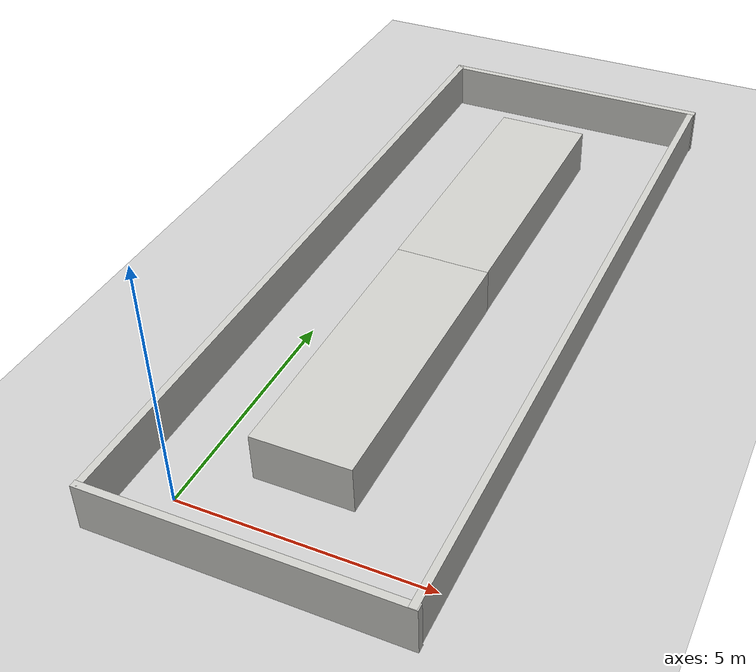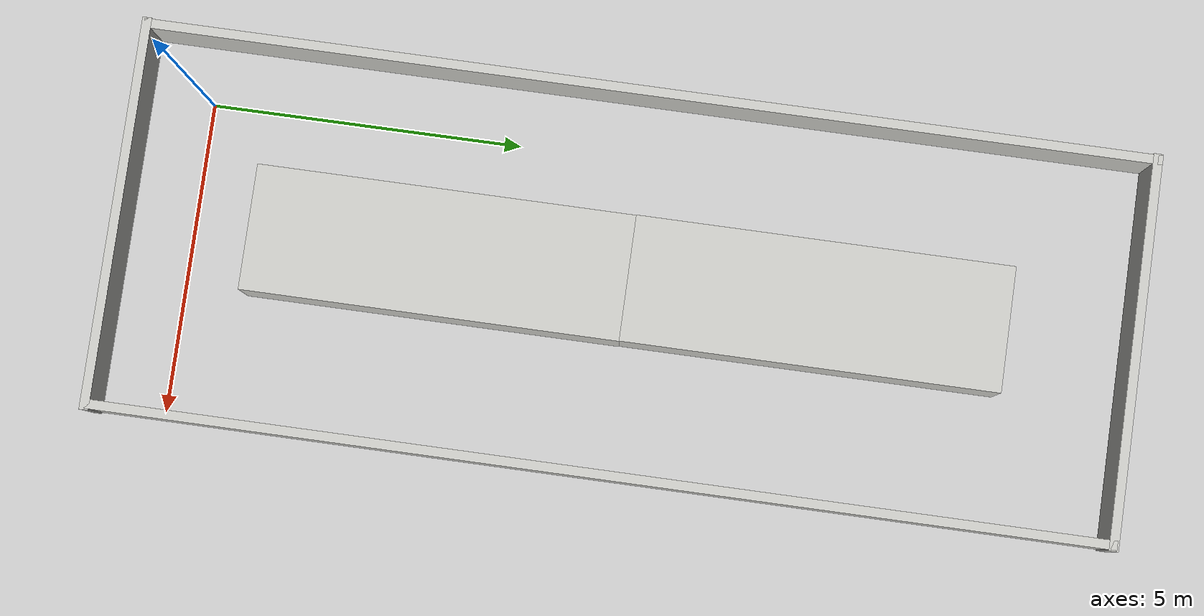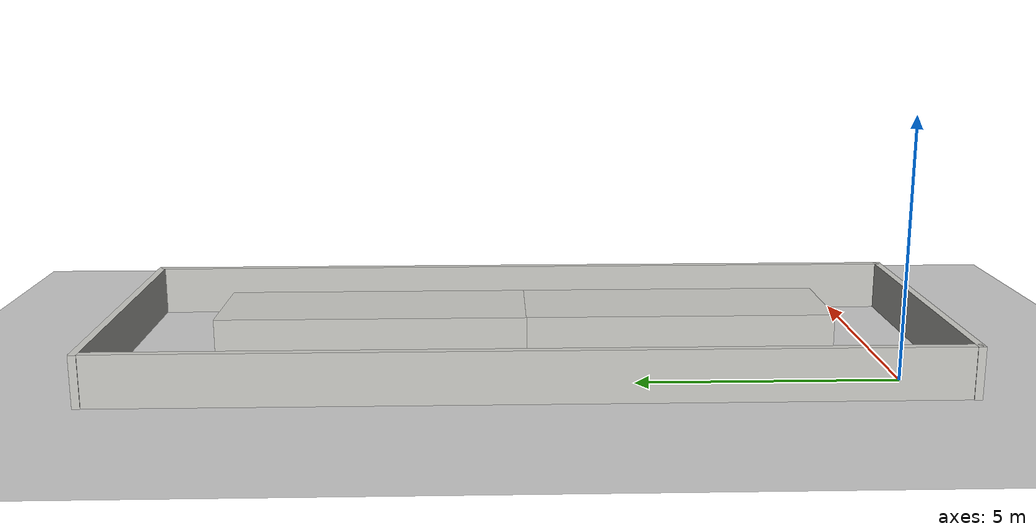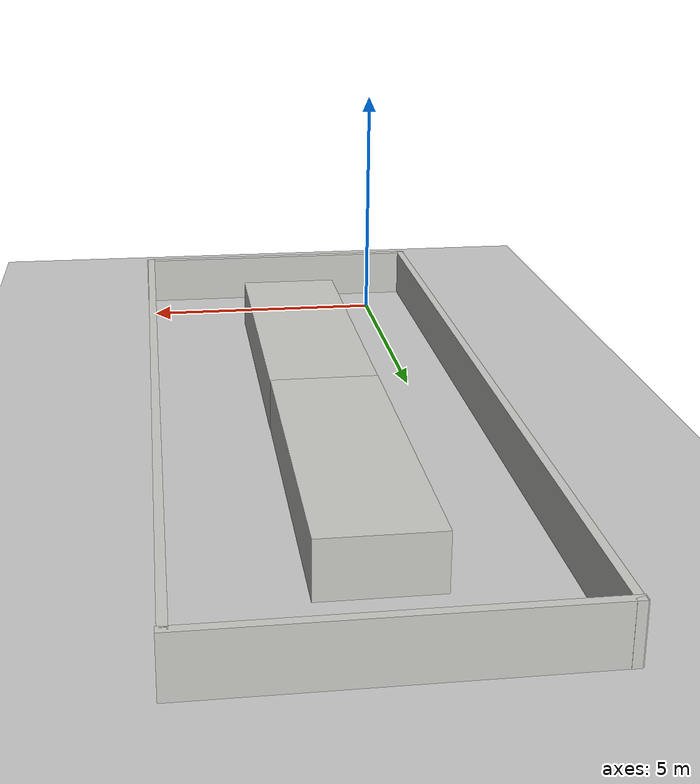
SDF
<sdf version="1.6">
 <world name="default">
  <light name="sun" type="directional">
   <pose>0 0 10 0 -0 0</pose>
   <diffuse>0.8 0.8 0.8 1</diffuse>
   <specular>0.1 0.1 0.1 1</specular>
   <attenuation>
    <range>1000</range>
    <constant>0.9</constant>
    <linear>0.01</linear>
    <quadratic>0.001</quadratic>
   </attenuation>
   <direction>-0.5 0.5 -1</direction>
  </light>
  <model name="ground_plane">
   <static>1</static>
   <link name="link">
    <collision name="collision">
     <geometry><plane><normal>0 0 1</normal><size>100 100</size></plane></geometry>
     <surface><friction><ode><mu>100</mu><mu2>50</mu2></ode></friction></surface>
    </collision>
    <visual name="visual">
     <cast_shadows>0</cast_shadows>
     <geometry><plane><normal>0 0 1</normal><size>100 100</size></plane></geometry>
     <material>
      <script><uri>file://media/materials/scripts/gazebo.material</uri><name>Gazebo/Grey</name></script>
     </material>
    </visual>
   </link>
  </model>
  <gravity>0 0 -9.8</gravity>
  <magnetic_field>6e-06 2.3e-05 -4.2e-05</magnetic_field>
  <atmosphere type="adiabatic"/>
  <physics name="default_physics" default="0" type="ode">
   <max_step_size>0.001</max_step_size>
   <real_time_factor>1.0</real_time_factor>
   <real_time_update_rate>1000</real_time_update_rate>
  </physics>
  <scene><ambient>0.4 0.4 0.4 1</ambient><background>0.7 0.7 0.7 1</background><shadows>1</shadows></scene>
  <spherical_coordinates>
   <surface_model>EARTH_WGS84</surface_model>
   <latitude_deg>0</latitude_deg>
   <longitude_deg>0</longitude_deg>
   <elevation>0</elevation>
   <heading_deg>0</heading_deg>
  </spherical_coordinates>
  <model name="block_2x6m_0">
   <pose>1.983 4.00296 0 0 -0 0</pose>
   <link name="Block">
    <collision name="Block_Collision">
     <geometry><box><size>2 6 1</size></box></geometry>
     <pose>0 0 0.5 0 -0 0</pose>
    </collision>
    <visual name="Block_Visual">
     <pose>0 0 0.5 0 -0 0</pose>
     <geometry><box><size>2 6 1</size></box></geometry>
     <material>
      <script><uri>file://media/materials/scripts/gazebo.material</uri><name>Gazebo/CeilingTiled</name></script>
      <ambient>1 0.764706 0.305882 1</ambient>
     </material>
    </visual>
   </link>
   <static>1</static>
  </model>
  <model name="block_2x6m_1">
   <pose>1.9768 9.99393 0 0 -0 0</pose>
   <link name="Block">
    <collision name="Block_Collision">
     <geometry><box><size>2 6 1</size></box></geometry>
     <pose>0 0 0.5 0 -0 0</pose>
    </collision>
    <visual name="Block_Visual">
     <pose>0 0 0.5 0 -0 0</pose>
     <geometry><box><size>2 6 1</size></box></geometry>
     <material>
      <script><uri>file://media/materials/scripts/gazebo.material</uri><name>Gazebo/CeilingTiled</name></script>
      <ambient>1 0.764706 0.305882 1</ambient>
     </material>
    </visual>
   </link>
   <static>1</static>
  </model>
  <model name="wall_16_m">
   <link name="Wall">
    <pose>-0.661944 0.053049 0 0 -0 0</pose>
    <inertial>
     <inertia><ixx>nan</ixx><ixy>0</ixy><ixz>0</ixz><iyy>nan</iyy><iyz>0</iyz><izz>nan</izz></inertia>
     <mass>0</mass>
    </inertial>
    <visual name="Wall_Visual">
     <pose>0 0 0.5 0 -0 0</pose>
     <geometry><box><size>16.1966 0.15 1</size></box></geometry>
     <material>
      <script><uri>file://media/materials/scripts/gazebo.material</uri><name>Gazebo/CeilingTiled</name></script>
      <ambient>1 0.764706 0.305882 1</ambient>
      <diffuse>1 1 1 1</diffuse>
      <specular>0 0 0 1</specular>
      <emissive>0 0 0 1</emissive>
     </material>
    </visual>
    <collision name="Wall_Collision">
     <pose>0 0 0.5 0 -0 0</pose>
     <geometry><box><size>16.1966 0.15 1</size></box></geometry>
     <surface>
      <friction>
       <ode><mu>1</mu><mu2>1</mu2><fdir1>0 0 0</fdir1><slip1>0</slip1><slip2>0</slip2></ode>
       <torsional>
        <coefficient>1</coefficient>
        <patch_radius>0</patch_radius>
        <surface_radius>0</surface_radius>
        <use_patch_radius>1</use_patch_radius>
        <ode><slip>0</slip></ode>
       </torsional>
      </friction>
      <bounce><restitution_coefficient>0</restitution_coefficient><threshold>1e+06</threshold></bounce>
      <contact>
       <collide_without_contact>0</collide_without_contact>
       <collide_without_contact_bitmask>1</collide_without_contact_bitmask>
       <collide_bitmask>1</collide_bitmask>
       <ode>
        <soft_cfm>0</soft_cfm>
        <soft_erp>0.2</soft_erp>
        <kp>1e+13</kp>
        <kd>1</kd>
        <max_vel>0.01</max_vel>
        <min_depth>0</min_depth>
       </ode>
       <bullet>
        <split_impulse>1</split_impulse>
        <split_impulse_penetration_threshold>-0.01</split_impulse_penetration_threshold>
        <soft_cfm>0</soft_cfm>
        <soft_erp>0.2</soft_erp>
        <kp>1e+13</kp>
        <kd>1</kd>
       </bullet>
      </contact>
     </surface>
    </collision>
   </link>
   <static>1</static>
   <pose>-0.950447 7.6413 0 0 -0 1.57079</pose>
  </model>
  <model name="wall_16_m_clone">
   <link name="Wall">
    <pose>-0.661944 0.053049 0 0 -0 0</pose>
    <inertial>
     <inertia><ixx>nan</ixx><ixy>0</ixy><ixz>0</ixz><iyy>nan</iyy><iyz>0</iyz><izz>nan</izz></inertia>
     <mass>0</mass>
    </inertial>
    <visual name="Wall_Visual">
     <pose>0 0 0.5 0 -0 0</pose>
     <geometry><box><size>16.1966 0.15 1</size></box></geometry>
     <material>
      <script><uri>file://media/materials/scripts/gazebo.material</uri><name>Gazebo/CeilingTiled</name></script>
      <ambient>1 0.764706 0.305882 1</ambient>
      <diffuse>1 1 1 1</diffuse>
      <specular>0 0 0 1</specular>
      <emissive>0 0 0 1</emissive>
     </material>
    </visual>
    <collision name="Wall_Collision">
     <pose>0 0 0.5 0 -0 0</pose>
     <geometry><box><size>16.1966 0.15 1</size></box></geometry>
     <surface>
      <friction>
       <ode><mu>1</mu><mu2>1</mu2><fdir1>0 0 0</fdir1><slip1>0</slip1><slip2>0</slip2></ode>
       <torsional>
        <coefficient>1</coefficient>
        <patch_radius>0</patch_radius>
        <surface_radius>0</surface_radius>
        <use_patch_radius>1</use_patch_radius>
        <ode><slip>0</slip></ode>
       </torsional>
      </friction>
      <bounce><restitution_coefficient>0</restitution_coefficient><threshold>1e+06</threshold></bounce>
      <contact>
       <collide_without_contact>0</collide_without_contact>
       <collide_without_contact_bitmask>1</collide_without_contact_bitmask>
       <collide_bitmask>1</collide_bitmask>
       <ode>
        <soft_cfm>0</soft_cfm>
        <soft_erp>0.2</soft_erp>
        <kp>1e+13</kp>
        <kd>1</kd>
        <max_vel>0.01</max_vel>
        <min_depth>0</min_depth>
       </ode>
       <bullet>
        <split_impulse>1</split_impulse>
        <split_impulse_penetration_threshold>-0.01</split_impulse_penetration_threshold>
        <soft_cfm>0</soft_cfm>
        <soft_erp>0.2</soft_erp>
        <kp>1e+13</kp>
        <kd>1</kd>
       </bullet>
      </contact>
     </surface>
    </collision>
   </link>
   <static>1</static>
   <pose>5.12457 7.61316 0 0 -0 1.57079</pose>
  </model>
  <model name="wall_6_m">
   <link name="Wall">
    <pose>-0.233258 0 0 0 -0 0</pose>
    <inertial>
     <inertia><ixx>nan</ixx><ixy>0</ixy><ixz>0</ixz><iyy>nan</iyy><iyz>0</iyz><izz>nan</izz></inertia>
     <mass>0</mass>
    </inertial>
    <visual name="Wall_Visual">
     <pose>0 0 0.5 0 -0 0</pose>
     <geometry><box><size>6.2628 0.15 1</size></box></geometry>
     <material>
      <script><uri>file://media/materials/scripts/gazebo.material</uri><name>Gazebo/CeilingTiled</name></script>
      <ambient>1 0.764706 0.305882 1</ambient>
      <diffuse>1 1 1 1</diffuse>
      <specular>0 0 0 1</specular>
      <emissive>0 0 0 1</emissive>
     </material>
    </visual>
    <collision name="Wall_Collision">
     <pose>0 0 0.5 0 -0 0</pose>
     <geometry><box><size>6.2628 0.15 1</size></box></geometry>
     <surface>
      <friction>
       <ode><mu>1</mu><mu2>1</mu2><fdir1>0 0 0</fdir1><slip1>0</slip1><slip2>0</slip2></ode>
       <torsional>
        <coefficient>1</coefficient>
        <patch_radius>0</patch_radius>
        <surface_radius>0</surface_radius>
        <use_patch_radius>1</use_patch_radius>
        <ode><slip>0</slip></ode>
       </torsional>
      </friction>
      <bounce><restitution_coefficient>0</restitution_coefficient><threshold>1e+06</threshold></bounce>
      <contact>
       <collide_without_contact>0</collide_without_contact>
       <collide_without_contact_bitmask>1</collide_without_contact_bitmask>
       <collide_bitmask>1</collide_bitmask>
       <ode>
        <soft_cfm>0</soft_cfm>
        <soft_erp>0.2</soft_erp>
        <kp>1e+13</kp>
        <kd>1</kd>
        <max_vel>0.01</max_vel>
        <min_depth>0</min_depth>
       </ode>
       <bullet>
        <split_impulse>1</split_impulse>
        <split_impulse_penetration_threshold>-0.01</split_impulse_penetration_threshold>
        <soft_cfm>0</soft_cfm>
        <soft_erp>0.2</soft_erp>
        <kp>1e+13</kp>
        <kd>1</kd>
       </bullet>
      </contact>
     </surface>
    </collision>
   </link>
   <static>1</static>
   <pose>2.26925 15 0 0 -0 0</pose>
  </model>
  <model name="wall_6_m_clone">
   <link name="Wall">
    <pose>-0.233258 0 0 0 -0 0</pose>
    <inertial>
     <inertia><ixx>nan</ixx><ixy>0</ixy><ixz>0</ixz><iyy>nan</iyy><iyz>0</iyz><izz>nan</izz></inertia>
     <mass>0</mass>
    </inertial>
    <visual name="Wall_Visual">
     <pose>0 0 0.5 0 -0 0</pose>
     <geometry><box><size>6.2628 0.15 1</size></box></geometry>
     <material>
      <script><uri>file://media/materials/scripts/gazebo.material</uri><name>Gazebo/CeilingTiled</name></script>
      <ambient>1 0.764706 0.305882 1</ambient>
      <diffuse>1 1 1 1</diffuse>
      <specular>0 0 0 1</specular>
      <emissive>0 0 0 1</emissive>
     </material>
    </visual>
    <collision name="Wall_Collision">
     <pose>0 0 0.5 0 -0 0</pose>
     <geometry><box><size>6.2628 0.15 1</size></box></geometry>
     <surface>
      <friction>
       <ode><mu>1</mu><mu2>1</mu2><fdir1>0 0 0</fdir1><slip1>0</slip1><slip2>0</slip2></ode>
       <torsional>
        <coefficient>1</coefficient>
        <patch_radius>0</patch_radius>
        <surface_radius>0</surface_radius>
        <use_patch_radius>1</use_patch_radius>
        <ode><slip>0</slip></ode>
       </torsional>
      </friction>
      <bounce><restitution_coefficient>0</restitution_coefficient><threshold>1e+06</threshold></bounce>
      <contact>
       <collide_without_contact>0</collide_without_contact>
       <collide_without_contact_bitmask>1</collide_without_contact_bitmask>
       <collide_bitmask>1</collide_bitmask>
       <ode>
        <soft_cfm>0</soft_cfm>
        <soft_erp>0.2</soft_erp>
        <kp>1e+13</kp>
        <kd>1</kd>
        <max_vel>0.01</max_vel>
        <min_depth>0</min_depth>
       </ode>
       <bullet>
        <split_impulse>1</split_impulse>
        <split_impulse_penetration_threshold>-0.01</split_impulse_penetration_threshold>
        <soft_cfm>0</soft_cfm>
        <soft_erp>0.2</soft_erp>
        <kp>1e+13</kp>
        <kd>1</kd>
       </bullet>
      </contact>
     </surface>
    </collision>
   </link>
   <static>1</static>
   <pose>2.2706 -1.08156 0 0 -0 0</pose>
  </model>
 </world>
</sdf>
